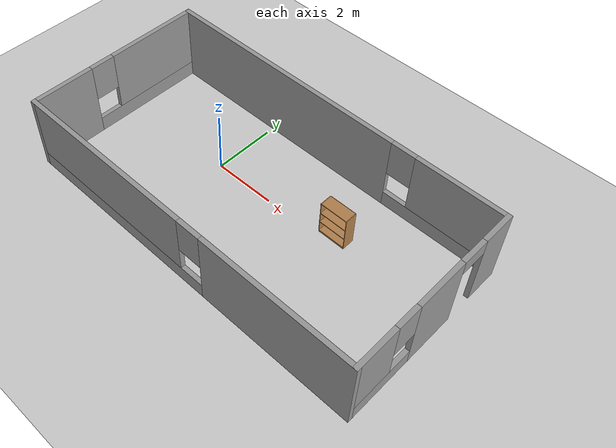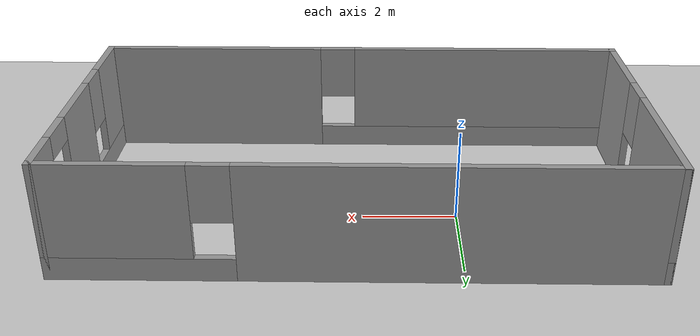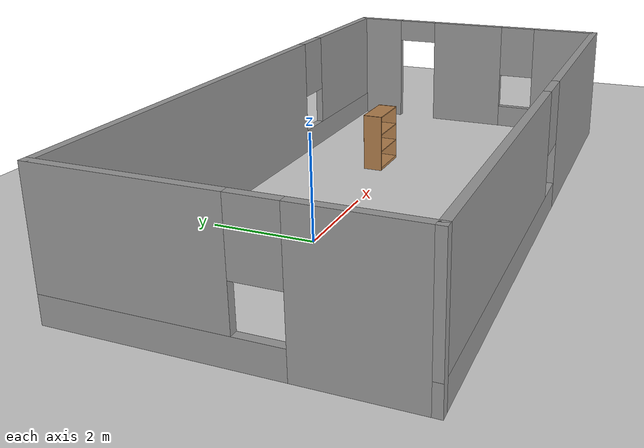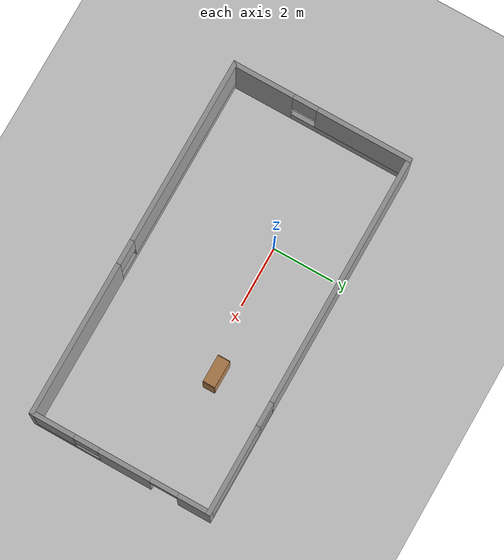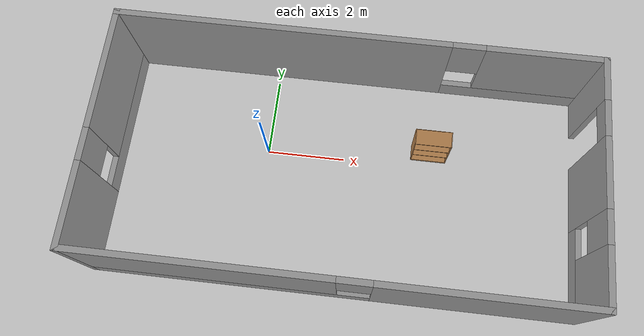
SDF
<sdf version="1.7">
 <world name="__default__">
  <include><uri>model://ground_plane</uri></include>
  <gravity>0 0 -9.8</gravity>
  <magnetic_field>6e-06 2.3e-05 -4.2e-05</magnetic_field>
  <atmosphere type="adiabatic"/>
  <physics type="ode">
   <max_step_size>0.001</max_step_size>
   <real_time_factor>1</real_time_factor>
   <real_time_update_rate>1000</real_time_update_rate>
  </physics>
  <scene><ambient>0.4 0.4 0.4 1</ambient><background>0.7 0.7 0.7 1</background><shadows>1</shadows></scene>
  <audio><device>default</device></audio>
  <spherical_coordinates>
   <surface_model>EARTH_WGS84</surface_model>
   <latitude_deg>0</latitude_deg>
   <longitude_deg>0</longitude_deg>
   <elevation>0</elevation>
   <heading_deg>0</heading_deg>
  </spherical_coordinates>
  <model name="demo">
   <pose>2.095 -0.605 0 0 -0 0</pose>
   <link name="Wall_1">
    <pose>-5.925 0 0 0 -0 1.5708</pose>
    <visual name="Wall_1_Visual_0">
     <pose>-1.9675 0 1.25 0 -0 0</pose>
     <geometry><box><size>2.065 0.15 2.5</size></box></geometry>
     <material>
      <script><uri>file://media/materials/scripts/gazebo.material</uri><name>Gazebo/Grey</name></script>
      <ambient>1 1 1 1</ambient>
     </material>
     <meta><layer>0</layer></meta>
    </visual>
    <collision name="Wall_1_Collision_0">
     <geometry><box><size>2.065 0.15 2.5</size></box></geometry>
     <pose>-1.9675 0 1.25 0 -0 0</pose>
    </collision>
    <visual name="Wall_1_Visual_1">
     <pose>1.0325 0 0.25 0 -0 0</pose>
     <geometry><box><size>3.935 0.15 0.5</size></box></geometry>
     <material>
      <script><uri>file://media/materials/scripts/gazebo.material</uri><name>Gazebo/Grey</name></script>
      <ambient>1 1 1 1</ambient>
     </material>
     <meta><layer>0</layer></meta>
    </visual>
    <collision name="Wall_1_Collision_1">
     <geometry><box><size>3.935 0.15 0.5</size></box></geometry>
     <pose>1.0325 0 0.25 0 -0 0</pose>
    </collision>
    <visual name="Wall_1_Visual_2">
     <pose>1.4325 0 1.5 0 -0 0</pose>
     <geometry><box><size>3.135 0.15 2</size></box></geometry>
     <material>
      <script><uri>file://media/materials/scripts/gazebo.material</uri><name>Gazebo/Grey</name></script>
      <ambient>1 1 1 1</ambient>
     </material>
     <meta><layer>0</layer></meta>
    </visual>
    <collision name="Wall_1_Collision_2">
     <geometry><box><size>3.135 0.15 2</size></box></geometry>
     <pose>1.4325 0 1.5 0 -0 0</pose>
    </collision>
    <visual name="Wall_1_Visual_3">
     <pose>-0.535 0 1.9 0 -0 0</pose>
     <geometry><box><size>0.8 0.15 1.2</size></box></geometry>
     <material>
      <script><uri>file://media/materials/scripts/gazebo.material</uri><name>Gazebo/Grey</name></script>
      <ambient>1 1 1 1</ambient>
     </material>
     <meta><layer>0</layer></meta>
    </visual>
    <collision name="Wall_1_Collision_3">
     <geometry><box><size>0.8 0.15 1.2</size></box></geometry>
     <pose>-0.535 0 1.9 0 -0 0</pose>
    </collision>
   </link>
   <link name="Wall_2">
    <pose>-0 2.925 0 0 -0 0</pose>
    <visual name="Wall_2_Visual_0">
     <pose>-1.8625 0 1.25 0 -0 0</pose>
     <geometry><box><size>8.275 0.15 2.5</size></box></geometry>
     <material>
      <script><uri>file://media/materials/scripts/gazebo.material</uri><name>Gazebo/Grey</name></script>
      <ambient>1 1 1 1</ambient>
     </material>
     <meta><layer>0</layer></meta>
    </visual>
    <collision name="Wall_2_Collision_0">
     <geometry><box><size>8.275 0.15 2.5</size></box></geometry>
     <pose>-1.8625 0 1.25 0 -0 0</pose>
    </collision>
    <visual name="Wall_2_Visual_1">
     <pose>4.1375 0 0.25 0 -0 0</pose>
     <geometry><box><size>3.725 0.15 0.5</size></box></geometry>
     <material>
      <script><uri>file://media/materials/scripts/gazebo.material</uri><name>Gazebo/Grey</name></script>
      <ambient>1 1 1 1</ambient>
     </material>
     <meta><layer>0</layer></meta>
    </visual>
    <collision name="Wall_2_Collision_1">
     <geometry><box><size>3.725 0.15 0.5</size></box></geometry>
     <pose>4.1375 0 0.25 0 -0 0</pose>
    </collision>
    <visual name="Wall_2_Visual_2">
     <pose>4.5375 0 1.5 0 -0 0</pose>
     <geometry><box><size>2.925 0.15 2</size></box></geometry>
     <material>
      <script><uri>file://media/materials/scripts/gazebo.material</uri><name>Gazebo/Grey</name></script>
      <ambient>1 1 1 1</ambient>
     </material>
     <meta><layer>0</layer></meta>
    </visual>
    <collision name="Wall_2_Collision_2">
     <geometry><box><size>2.925 0.15 2</size></box></geometry>
     <pose>4.5375 0 1.5 0 -0 0</pose>
    </collision>
    <visual name="Wall_2_Visual_3">
     <pose>2.675 0 1.9 0 -0 0</pose>
     <geometry><box><size>0.8 0.15 1.2</size></box></geometry>
     <material>
      <script><uri>file://media/materials/scripts/gazebo.material</uri><name>Gazebo/Grey</name></script>
      <ambient>1 1 1 1</ambient>
     </material>
     <meta><layer>0</layer></meta>
    </visual>
    <collision name="Wall_2_Collision_3">
     <geometry><box><size>0.8 0.15 1.2</size></box></geometry>
     <pose>2.675 0 1.9 0 -0 0</pose>
    </collision>
   </link>
   <link name="Wall_3">
    <pose>5.925 0 0 0 -0 -1.5708</pose>
    <visual name="Wall_3_Visual_0">
     <pose>-2.4475 0 1.25 0 -0 0</pose>
     <geometry><box><size>1.105 0.15 2.5</size></box></geometry>
     <material>
      <script><uri>file://media/materials/scripts/gazebo.material</uri><name>Gazebo/Grey</name></script>
      <ambient>1 1 1 1</ambient>
     </material>
     <meta><layer>0</layer></meta>
    </visual>
    <collision name="Wall_3_Collision_0">
     <geometry><box><size>1.105 0.15 2.5</size></box></geometry>
     <pose>-2.4475 0 1.25 0 -0 0</pose>
    </collision>
    <visual name="Wall_3_Visual_1">
     <pose>-0.135 0 1.25 0 -0 0</pose>
     <geometry><box><size>1.72 0.15 2.5</size></box></geometry>
     <material>
      <script><uri>file://media/materials/scripts/gazebo.material</uri><name>Gazebo/Grey</name></script>
      <ambient>1 1 1 1</ambient>
     </material>
     <meta><layer>0</layer></meta>
    </visual>
    <collision name="Wall_3_Collision_1">
     <geometry><box><size>1.72 0.15 2.5</size></box></geometry>
     <pose>-0.135 0 1.25 0 -0 0</pose>
    </collision>
    <visual name="Wall_3_Visual_2">
     <pose>1.8625 0 0.25 0 -0 0</pose>
     <geometry><box><size>2.275 0.15 0.5</size></box></geometry>
     <material>
      <script><uri>file://media/materials/scripts/gazebo.material</uri><name>Gazebo/Grey</name></script>
      <ambient>1 1 1 1</ambient>
     </material>
     <meta><layer>0</layer></meta>
    </visual>
    <collision name="Wall_3_Collision_2">
     <geometry><box><size>2.275 0.15 0.5</size></box></geometry>
     <pose>1.8625 0 0.25 0 -0 0</pose>
    </collision>
    <visual name="Wall_3_Visual_3">
     <pose>2.2625 0 1.5 0 -0 0</pose>
     <geometry><box><size>1.475 0.15 2</size></box></geometry>
     <material>
      <script><uri>file://media/materials/scripts/gazebo.material</uri><name>Gazebo/Grey</name></script>
      <ambient>1 1 1 1</ambient>
     </material>
     <meta><layer>0</layer></meta>
    </visual>
    <collision name="Wall_3_Collision_3">
     <geometry><box><size>1.475 0.15 2</size></box></geometry>
     <pose>2.2625 0 1.5 0 -0 0</pose>
    </collision>
    <visual name="Wall_3_Visual_4">
     <pose>1.125 0 1.9 0 -0 0</pose>
     <geometry><box><size>0.8 0.15 1.2</size></box></geometry>
     <material>
      <script><uri>file://media/materials/scripts/gazebo.material</uri><name>Gazebo/Grey</name></script>
      <ambient>1 1 1 1</ambient>
     </material>
     <meta><layer>0</layer></meta>
    </visual>
    <collision name="Wall_3_Collision_4">
     <geometry><box><size>0.8 0.15 1.2</size></box></geometry>
     <pose>1.125 0 1.9 0 -0 0</pose>
    </collision>
    <visual name="Wall_3_Visual_5">
     <pose>-1.445 0 2.25 0 -0 0</pose>
     <geometry><box><size>0.9 0.15 0.5</size></box></geometry>
     <material>
      <script><uri>file://media/materials/scripts/gazebo.material</uri><name>Gazebo/Grey</name></script>
      <ambient>1 1 1 1</ambient>
     </material>
     <meta><layer>0</layer></meta>
    </visual>
    <collision name="Wall_3_Collision_5">
     <geometry><box><size>0.9 0.15 0.5</size></box></geometry>
     <pose>-1.445 0 2.25 0 -0 0</pose>
    </collision>
   </link>
   <link name="Wall_4">
    <pose>-0 -2.925 0 0 -0 3.14159</pose>
    <visual name="Wall_4_Visual_0">
     <pose>-3.4725 0 1.25 0 -0 0</pose>
     <geometry><box><size>5.055 0.15 2.5</size></box></geometry>
     <material>
      <script><uri>file://media/materials/scripts/gazebo.material</uri><name>Gazebo/Grey</name></script>
      <ambient>1 1 1 1</ambient>
     </material>
     <meta><layer>0</layer></meta>
    </visual>
    <collision name="Wall_4_Collision_0">
     <geometry><box><size>5.055 0.15 2.5</size></box></geometry>
     <pose>-3.4725 0 1.25 0 -0 0</pose>
    </collision>
    <visual name="Wall_4_Visual_1">
     <pose>2.5275 0 0.25 0 -0 0</pose>
     <geometry><box><size>6.945 0.15 0.5</size></box></geometry>
     <material>
      <script><uri>file://media/materials/scripts/gazebo.material</uri><name>Gazebo/Grey</name></script>
      <ambient>1 1 1 1</ambient>
     </material>
     <meta><layer>0</layer></meta>
    </visual>
    <collision name="Wall_4_Collision_1">
     <geometry><box><size>6.945 0.15 0.5</size></box></geometry>
     <pose>2.5275 0 0.25 0 -0 0</pose>
    </collision>
    <visual name="Wall_4_Visual_2">
     <pose>2.9275 0 1.5 0 -0 0</pose>
     <geometry><box><size>6.145 0.15 2</size></box></geometry>
     <material>
      <script><uri>file://media/materials/scripts/gazebo.material</uri><name>Gazebo/Grey</name></script>
      <ambient>1 1 1 1</ambient>
     </material>
     <meta><layer>0</layer></meta>
    </visual>
    <collision name="Wall_4_Collision_2">
     <geometry><box><size>6.145 0.15 2</size></box></geometry>
     <pose>2.9275 0 1.5 0 -0 0</pose>
    </collision>
    <visual name="Wall_4_Visual_3">
     <pose>-0.545 0 1.9 0 -0 0</pose>
     <geometry><box><size>0.8 0.15 1.2</size></box></geometry>
     <material>
      <script><uri>file://media/materials/scripts/gazebo.material</uri><name>Gazebo/Grey</name></script>
      <ambient>1 1 1 1</ambient>
     </material>
     <meta><layer>0</layer></meta>
    </visual>
    <collision name="Wall_4_Collision_3">
     <geometry><box><size>0.8 0.15 1.2</size></box></geometry>
     <pose>-0.545 0 1.9 0 -0 0</pose>
    </collision>
   </link>
   <static>1</static>
  </model>
  <model name="bookshelf">
   <static>1</static>
   <link name="link">
    <inertial><mass>1</mass></inertial>
    <collision name="back">
     <pose>0 0.005 0.6 0 -0 0</pose>
     <geometry><box><size>0.9 0.01 1.2</size></box></geometry>
    </collision>
    <visual name="visual1">
     <pose>0 0.005 0.6 0 -0 0</pose>
     <geometry><box><size>0.9 0.01 1.2</size></box></geometry>
     <material>
      <script><uri>file://media/materials/scripts/gazebo.material</uri><name>Gazebo/Wood</name></script>
     </material>
    </visual>
    <collision name="left_side">
     <pose>0.45 -0.195 0.6 0 -0 0</pose>
     <geometry><box><size>0.02 0.4 1.2</size></box></geometry>
    </collision>
    <visual name="visual2">
     <pose>0.45 -0.195 0.6 0 -0 0</pose>
     <geometry><box><size>0.02 0.4 1.2</size></box></geometry>
     <material>
      <script><uri>file://media/materials/scripts/gazebo.material</uri><name>Gazebo/Wood</name></script>
     </material>
    </visual>
    <collision name="right_side">
     <pose>-0.45 -0.195 0.6 0 -0 0</pose>
     <geometry><box><size>0.02 0.4 1.2</size></box></geometry>
    </collision>
    <visual name="visual3">
     <pose>-0.45 -0.195 0.6 0 -0 0</pose>
     <geometry><box><size>0.02 0.4 1.2</size></box></geometry>
     <material>
      <script><uri>file://media/materials/scripts/gazebo.material</uri><name>Gazebo/Wood</name></script>
     </material>
    </visual>
    <collision name="bottom">
     <pose>0 -0.195 0.03 0 -0 0</pose>
     <geometry><box><size>0.88 0.4 0.06</size></box></geometry>
    </collision>
    <visual name="visual4">
     <pose>0 -0.195 0.03 0 -0 0</pose>
     <geometry><box><size>0.88 0.4 0.06</size></box></geometry>
     <material>
      <script><uri>file://media/materials/scripts/gazebo.material</uri><name>Gazebo/Wood</name></script>
     </material>
    </visual>
    <collision name="top">
     <pose>0 -0.195 1.19 0 -0 0</pose>
     <geometry><box><size>0.88 0.4 0.02</size></box></geometry>
    </collision>
    <visual name="visual5">
     <pose>0 -0.195 1.19 0 -0 0</pose>
     <geometry><box><size>0.88 0.4 0.02</size></box></geometry>
     <material>
      <script><uri>file://media/materials/scripts/gazebo.material</uri><name>Gazebo/Wood</name></script>
     </material>
    </visual>
    <collision name="low_shelf">
     <pose>0 -0.195 0.43 0 -0 0</pose>
     <geometry><box><size>0.88 0.4 0.02</size></box></geometry>
    </collision>
    <visual name="visual6">
     <pose>0 -0.195 0.43 0 -0 0</pose>
     <geometry><box><size>0.88 0.4 0.02</size></box></geometry>
     <material>
      <script><uri>file://media/materials/scripts/gazebo.material</uri><name>Gazebo/Wood</name></script>
     </material>
    </visual>
    <collision name="high_shelf">
     <pose>0 -0.195 0.8 0 -0 0</pose>
     <geometry><box><size>0.88 0.4 0.02</size></box></geometry>
    </collision>
    <visual name="visual7">
     <pose>0 -0.195 0.8 0 -0 0</pose>
     <geometry><box><size>0.88 0.4 0.02</size></box></geometry>
     <material>
      <script><uri>file://media/materials/scripts/gazebo.material</uri><name>Gazebo/Wood</name></script>
     </material>
    </visual>
   </link>
   <pose>4.2222 0.596279 0 0 -0 0</pose>
  </model>
 </world>
</sdf>
